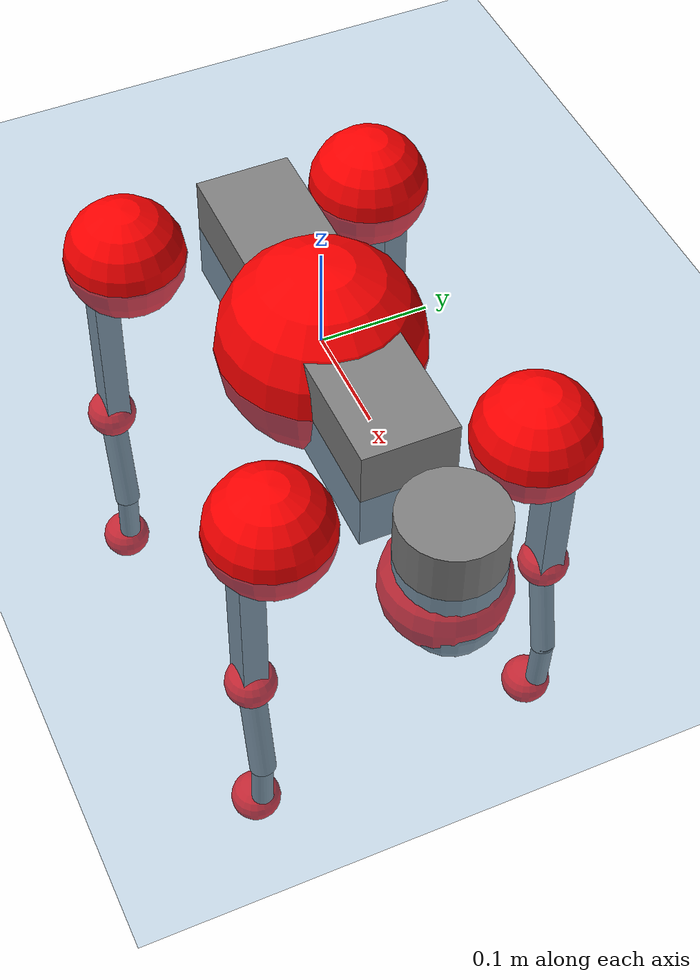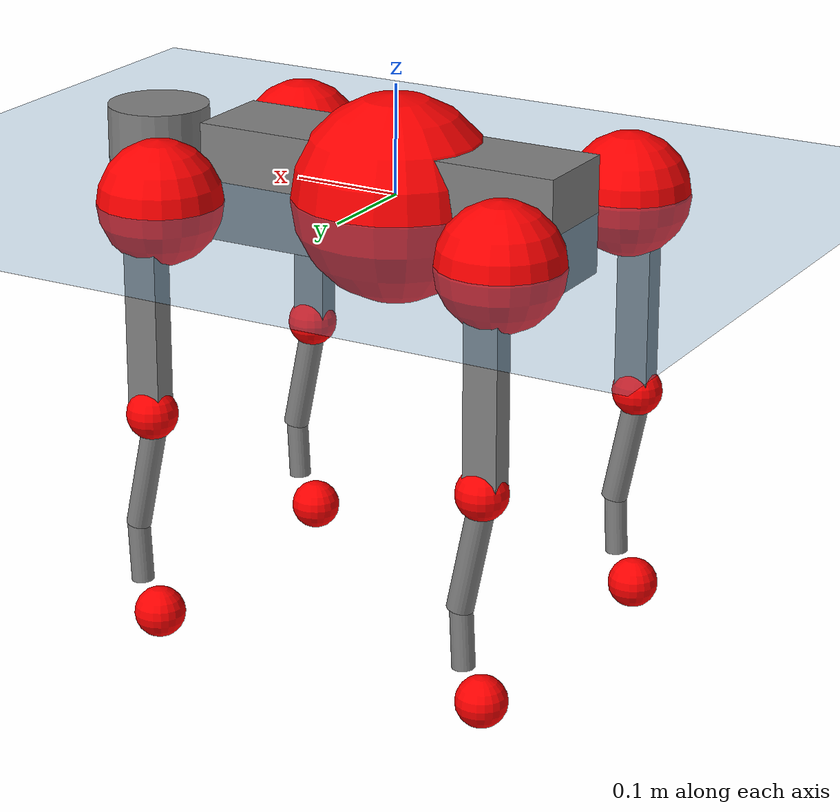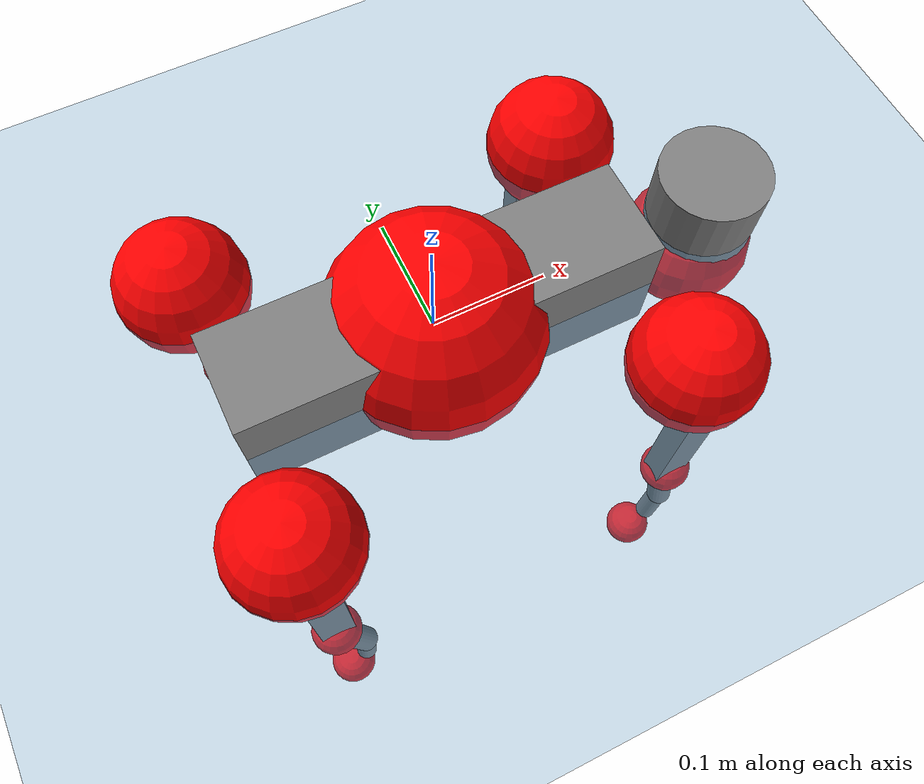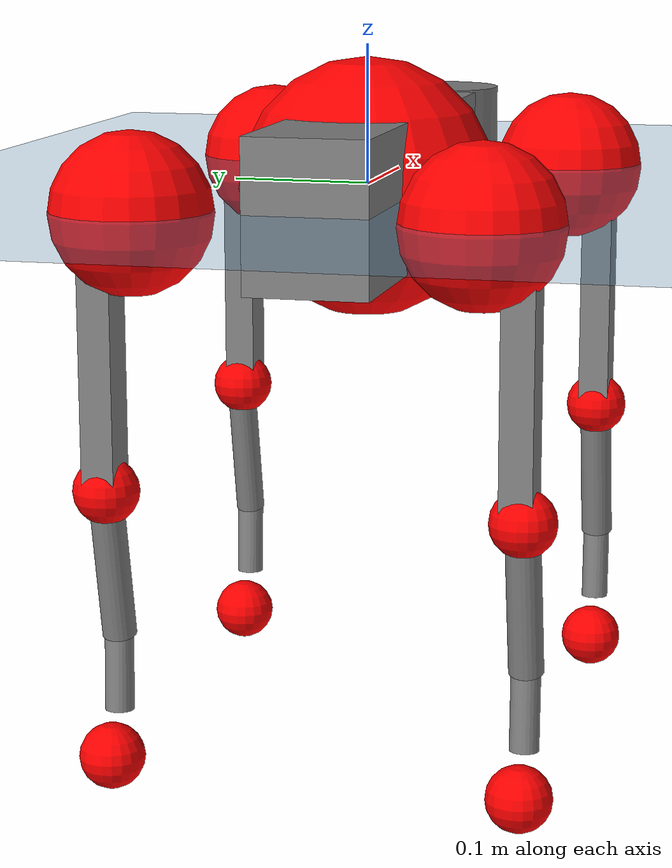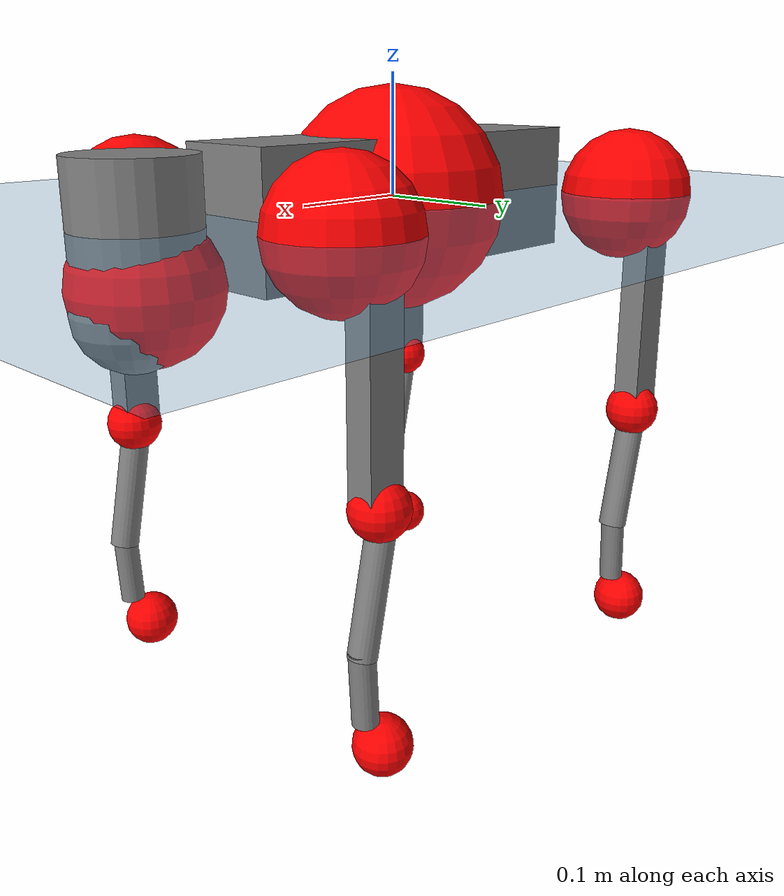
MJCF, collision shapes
<mujoco model="go2">
  <compiler angle="radian" assetdir="assets" balanceinertia="true" inertiafromgeom="false"/>

  <option timestep="0.005" density="1.2" viscosity="2e-05"/>

  <size nkey="1"/>

  <visual>
    <quality shadowsize="8192"/>
    <map shadowclip="0.5"/>
  </visual>

  <default>
    <default class="/">
      <geom contype="0" conaffinity="0" group="1" solref="-1000 -80"/>
      <site size="0.01 0.005 0.005" group="5"/>
      <general forcelimited="true" biastype="affine" gainprm="20" biasprm="0 -20 -0.5"/>
      <default class="go2">
        <joint armature="0.01" damping="0.01" frictionloss="0.2"/>
        <geom condim="1" margin="0.001"/>
        <default class="visual">
          <geom type="mesh" group="2"/>
        </default>
        <default class="collision">
          <geom group="3"/>
          <default class="foot">
            <geom size="0.022 0 0" condim="6" priority="1" friction="0.8 0.02 0.01" solimp="0.015 1 0.022"/>
          </default>
        </default>
        <default class="reward_collision_sphere">
          <geom group="5" rgba="1 0 0 1"/>
        </default>
      </default>
    </default>
  </default>

  <asset>
    <texture type="skybox" colorspace="auto" name="//unnamed_texture_0" builtin="gradient" rgb1="0.95 0.95 0.95" rgb2="0.95 0.95 0.95" width="100" height="600"/>
    <texture type="2d" colorspace="auto" name="texplane" builtin="checker" rgb1="0.345 0.575 0.748" rgb2="0.345 0.575 0.748" markrgb="1 1 1" width="512" height="512"/>
    <material name="MatPlane" class="/" texture="texplane" texuniform="true" texrepeat="2 2" specular="0.9"/>
    <material name="metal" class="/" rgba="0.9 0.95 0.95 1"/>
    <material name="black" class="/" rgba="0 0 0 1"/>
    <material name="white" class="/"/>
    <material name="gray" class="/" rgba="0.671705 0.692426 0.77427 1"/>
    <mesh name="base_0" class="/" file="base_0.obj"/>
    <mesh name="base_1" class="/" file="base_1.obj"/>
    <mesh name="base_2" class="/" file="base_2.obj"/>
    <mesh name="base_3" class="/" file="base_3.obj"/>
    <mesh name="base_4" class="/" file="base_4.obj"/>
    <mesh name="hip_0" class="/" file="hip_0.obj"/>
    <mesh name="hip_1" class="/" file="hip_1.obj"/>
    <mesh name="thigh_0" class="/" file="thigh_0.obj"/>
    <mesh name="thigh_1" class="/" file="thigh_1.obj"/>
    <mesh name="thigh_mirror_0" class="/" file="thigh_mirror_0.obj"/>
    <mesh name="thigh_mirror_1" class="/" file="thigh_mirror_1.obj"/>
    <mesh name="calf_0" class="/" file="calf_0.obj"/>
    <mesh name="calf_1" class="/" file="calf_1.obj"/>
    <mesh name="calf_mirror_0" class="/" file="calf_mirror_0.obj"/>
    <mesh name="calf_mirror_1" class="/" file="calf_mirror_1.obj"/>
    <mesh name="foot" class="/" file="foot.obj"/>
  </asset>

  <worldbody>
    <geom name="floor" class="/" size="100 100 0.125" type="plane" group="0" material="MatPlane"/>
    <light name="toplight_shadow" class="/" pos="0 0 5" dir="0.0990148 0.0990148 -0.990148" type="directional" ambient="0.04 0.04 0.04" diffuse="0.55 0.55 0.55" specular="0.12 0.12 0.12"/>
    <light name="toplight_fill" class="/" pos="0 0 5" dir="0.0990148 0.0990148 -0.990148" type="directional" castshadow="false" ambient="0.04 0.04 0.04" diffuse="0.3 0.3 0.3" specular="0.08 0.08 0.08"/>
    <body name="trunk" childclass="go2" pos="-0.000127388 0.000103355 -0.0022558" quat="1 0.000172945 1.96597e-05 -0.000208077">
      <inertial pos="0.0184185 0.00257653 -0.0023766" quat="-0.000675936 0.713767 -0.0014403 0.700382" mass="5.58166" diaginertia="0.0584622 0.10976 0.0148607"/>
      <joint name="//unnamed_joint_0" type="free" armature="0" damping="0" frictionloss="0"/>
      <geom name="//unnamed_geom_1" class="visual" material="black" mesh="base_0"/>
      <geom name="//unnamed_geom_2" class="visual" material="black" mesh="base_1"/>
      <geom name="//unnamed_geom_3" class="visual" material="black" mesh="base_2"/>
      <geom name="//unnamed_geom_4" class="visual" material="white" mesh="base_3"/>
      <geom name="//unnamed_geom_5" class="visual" material="gray" mesh="base_4"/>
      <geom name="trunk_1" class="collision" size="0.176567 0.0438837 0.0535053" type="box"/>
      <geom name="trunk_2" class="collision" size="0.0469344 0.042241" pos="0.251407 0 0.00908363" type="cylinder"/>
      <geom name="trunk_3" class="collision" size="0.0441184" pos="0.258465 0 -0.0545018"/>
      <geom name="//unnamed_geom_9" class="reward_collision_sphere" size="0.0938689"/>
      <geom name="//unnamed_geom_10" class="reward_collision_sphere" size="0.0563213" pos="0.246997 0 -0.0408763"/>
      <site name="imu" pos="-0.0241133 -0.00645158 0.0380325" size="0.00938689"/>
      <camera name="track" pos="0 -2.05114 0" quat="0.707107 0.707107 0 0" mode="trackcom"/>
      <camera name="ego_camera" pos="0.275225 0 0.0408763" quat="-0.5 -0.5 0.5 0.5"/>
      <body name="FL_hip" pos="0.170244 0.0464554 0.000518565" quat="1 0.000126239 0.00017341 -6.28695e-06">
        <inertial pos="-0.0073734 0.0017361 -0.00134413" quat="0.493663 0.501282 0.507514 0.497436" mass="0.572046" diaginertia="0.000475908 0.000672319 0.000304853"/>
        <joint name="FL_hip_joint" pos="0 0 0" axis="0.999983 -0.00434222 0.00379769" stiffness="0.000731168" range="-1.05486 1.05294" armature="0.0102065" damping="0.0117102" frictionloss="0.162661"/>
        <geom name="//unnamed_geom_11" class="visual" material="metal" mesh="hip_0"/>
        <geom name="//unnamed_geom_12" class="visual" material="gray" mesh="hip_1"/>
        <geom name="//unnamed_geom_13" class="collision" size="0.0431797 0.0187738" pos="0 0.0820457 0" quat="0.707107 0.707107 0 0" type="cylinder"/>
        <geom name="//unnamed_geom_14" class="reward_collision_sphere" size="0.0563213" pos="0 0.07179 0"/>
        <body name="FL_thigh" pos="-0.00184869 0.0984798 0.00264653" quat="1 2.1297e-06 -0.000228892 -1.8644e-05">
          <inertial pos="-0.00440622 -0.0225814 -0.0307313" quat="0.82983 0.0854404 -0.0220691 0.550994" mass="0.909018" diaginertia="0.00317338 0.00660237 0.000507615"/>
          <joint name="FL_thigh_joint" pos="0 0 0" axis="-0.0071318 0.999928 0.00961908" stiffness="0.000884009" range="-1.60756 3.50381" armature="0.00905815" damping="0.0117796" frictionloss="0.184172"/>
          <geom name="//unnamed_geom_15" class="visual" material="metal" mesh="thigh_0"/>
          <geom name="//unnamed_geom_16" class="visual" material="gray" mesh="thigh_1"/>
          <geom name="//unnamed_geom_17" class="collision" size="0.0999704 0.0114989 0.0159577" pos="0 0 -0.0967407" quat="0.707107 0 0.707107 0" type="box"/>
          <body name="FL_calf" pos="-0.00245787 0.00135628 -0.191236" quat="0.999999 0.000443249 0.000462997 0.00127821">
            <inertial pos="0.00549792 -0.000537383 -0.12776" quat="0.710714 0.00104501 -0.00464701 0.703465" mass="0.194023" diaginertia="0.000795966 0.00162443 3.18946e-05"/>
            <joint name="FL_calf_joint" pos="0 0 0" axis="0.000511551 0.999948 0.0101743" range="-2.73503 -0.818441" armature="0.00924249" damping="0.0153986" frictionloss="0.166579"/>
            <geom name="//unnamed_geom_18" class="visual" material="gray" mesh="calf_0"/>
            <geom name="//unnamed_geom_19" class="visual" material="black" mesh="calf_1"/>
            <geom name="FL_calf0" class="collision" size="0.0112643 0.0563213" pos="0.00705705 0 -0.0545018" quat="0.994493 0 -0.104807 0" type="cylinder"/>
            <geom name="//unnamed_geom_21" class="collision" size="0.0103256 0.0305074" pos="0.0176426 0 -0.134438" quat="0.999688 0 0.0249974 0" type="cylinder"/>
            <geom name="//unnamed_geom_22" class="visual" pos="0 0 -0.193481" quat="1 0 0 0" material="black" mesh="foot"/>
            <geom name="FL_foot" class="foot" size="0.0188268" pos="-0.00176426 0 -0.193481"/>
            <geom name="//unnamed_geom_24" class="reward_collision_sphere" size="0.0234672"/>
            <geom name="//unnamed_geom_25" class="reward_collision_sphere" size="0.0234672" pos="-0.00176426 0 -0.193481"/>
            <site name="FL_foot" class="foot" pos="-0.00176426 0 -0.193481" size="0.00938689"/>
          </body>
        </body>
      </body>
      <body name="FR_hip" pos="0.171604 -0.0488295 -0.000814674" quat="0.999999 0.000260945 -3.81059e-05 0.00134181">
        <inertial pos="-0.00468893 -0.002067 0.000762937" quat="0.49842 0.504965 0.499515 0.497064" mass="0.537161" diaginertia="0.000455731 0.000645567 0.000296483"/>
        <joint name="FR_hip_joint" pos="0 0 0" axis="0.999997 -0.0019734 0.00148262" stiffness="0.00699369" range="-0.999569 0.994527" armature="0.00919673" damping="0.0141212" frictionloss="0.170348"/>
        <geom name="//unnamed_geom_26" class="visual" pos="0 1.02107e-09 4.37959e-08" quat="4.63268e-05 1 0 0" material="metal" mesh="hip_0"/>
        <geom name="//unnamed_geom_27" class="visual" pos="0 1.65528e-09 -1.08324e-07" quat="4.63268e-05 1 0 0" material="gray" mesh="hip_1"/>
        <geom name="//unnamed_geom_28" class="collision" size="0.0431797 0.0187738" pos="0 -0.0820457 0" quat="0.707107 0.707107 0 0" type="cylinder"/>
        <geom name="//unnamed_geom_29" class="reward_collision_sphere" size="0.0563213" pos="0 -0.07179 0"/>
        <body name="FR_thigh" pos="0.00296199 -0.0959943 0.000198805" quat="1 6.77508e-05 3.4886e-05 -0.000133531">
          <inertial pos="-0.00297054 0.0239007 -0.0297259" quat="0.552193 -0.0207502 0.0840566 0.829209" mass="0.971775" diaginertia="0.00316559 0.00680266 0.000553102"/>
          <joint name="FR_thigh_joint" pos="0 0 0" axis="-0.00695053 -0.999966 -0.00449464" stiffness="0.00160156" range="-3.44153 1.51402" armature="0.00963229" damping="0" frictionloss="0.197482"/>
          <geom name="//unnamed_geom_30" class="visual" material="metal" mesh="thigh_mirror_0"/>
          <geom name="//unnamed_geom_31" class="visual" material="gray" mesh="thigh_mirror_1"/>
          <geom name="//unnamed_geom_32" class="collision" size="0.0999704 0.0114989 0.0159577" pos="0 0 -0.0967407" quat="0.707107 0 0.707107 0" type="box"/>
          <body name="FR_calf" pos="0.00264841 -0.000301321 -0.191664" quat="1 0.000116083 -0.000178674 0.000499414">
            <inertial pos="0.00559934 0.00181368 -0.126126" quat="0.701202 -0.00415621 0.00310811 0.712944" mass="0.192976" diaginertia="0.000808566 0.00164299 3.25182e-05"/>
            <joint name="FR_calf_joint" pos="0 0 0" axis="0.00729499 -0.999973 -0.000858696" range="0.823671 2.66735" armature="0.00934356" damping="0.0149586" frictionloss="0.164649"/>
            <geom name="//unnamed_geom_33" class="visual" material="gray" mesh="calf_mirror_0"/>
            <geom name="//unnamed_geom_34" class="visual" material="black" mesh="calf_mirror_1"/>
            <geom name="FR_calf0" class="collision" size="0.012203 0.0563213" pos="0.00882132 0 -0.0545018" quat="0.995004 0 -0.0998334 0" type="cylinder"/>
            <geom name="//unnamed_geom_36" class="collision" size="0.0103256 0.0305074" pos="0.0176426 0 -0.134438" quat="0.999688 0 0.0249974 0" type="cylinder"/>
            <geom name="//unnamed_geom_37" class="visual" pos="0 0 -0.193481" quat="1 0 0 0" material="black" mesh="foot"/>
            <geom name="FR_foot" class="foot" size="0.0226223" pos="-0.00176426 0 -0.193481"/>
            <geom name="//unnamed_geom_39" class="reward_collision_sphere" size="0.0234672"/>
            <geom name="//unnamed_geom_40" class="reward_collision_sphere" size="0.0234672" pos="-0.00176426 0 -0.193481"/>
            <site name="FR_foot" class="foot" pos="-0.00176426 0 -0.193481" size="0.00938689"/>
          </body>
        </body>
      </body>
      <body name="RL_hip" pos="-0.169273 0.0504505 -0.000793364" quat="0.999999 -0.000213105 0.000735092 0.00068379">
        <inertial pos="0.00381095 -0.00036572 -0.00111732" quat="0.503151 0.503993 0.488569 0.504113" mass="0.54402" diaginertia="0.000470118 0.000692827 0.000295026"/>
        <joint name="RL_hip_joint" pos="0 0 0" axis="-0.99969 0.0245809 -0.00397293" range="-1.0681 1.02699" armature="0.009387" damping="0.00179105" frictionloss="0.197593"/>
        <geom name="//unnamed_geom_41" class="visual" pos="2.28521e-10 0 4.47953e-08" quat="4.63268e-05 0 1 0" material="metal" mesh="hip_0"/>
        <geom name="//unnamed_geom_42" class="visual" pos="3.70459e-10 0 3.97271e-08" quat="4.63268e-05 0 1 0" material="gray" mesh="hip_1"/>
        <geom name="//unnamed_geom_43" class="collision" size="0.0431797 0.0187738" pos="0 0.0820457 0" quat="0.707107 0.707107 0 0" type="cylinder"/>
        <geom name="//unnamed_geom_44" class="reward_collision_sphere" size="0.0563213" pos="0 0.07179 0"/>
        <body name="RL_thigh" pos="-0.000285205 0.0950422 -0.000225257" quat="1 1.60014e-05 -7.57717e-05 0.000651098">
          <inertial pos="-0.0029432 -0.024831 -0.0297331" quat="0.829593 0.0846021 -0.0200854 0.551557" mass="0.953189" diaginertia="0.00333031 0.00674065 0.000568114"/>
          <joint name="RL_thigh_joint" pos="0 0 0" axis="0.00922603 0.999939 0.00608316" stiffness="0.00914433" range="-0.527834 4.53209" armature="0.00926964" damping="0.00522708" frictionloss="0.189679"/>
          <geom name="//unnamed_geom_45" class="visual" material="metal" mesh="thigh_0"/>
          <geom name="//unnamed_geom_46" class="visual" material="gray" mesh="thigh_1"/>
          <geom name="//unnamed_geom_47" class="collision" size="0.0999704 0.0114989 0.0159577" pos="0 0 -0.0967407" quat="0.707107 0 0.707107 0" type="box"/>
          <body name="RL_calf" pos="0.00271348 0.000130904 -0.194006" quat="0.999999 -0.000788188 -0.0010052 0.000602475">
            <inertial pos="0.00807275 2.39381e-05 -0.13052" quat="0.710592 0.00189648 -0.00419103 0.70359" mass="0.198311" diaginertia="0.000824739 0.00176738 3.47963e-05"/>
            <joint name="RL_calf_joint" pos="0 0 0" axis="0.015995 0.999849 0.00682498" stiffness="1.75643e-05" range="-2.72469 -0.881568" armature="0.00941142" damping="0.0103382" frictionloss="0.195755"/>
            <geom name="//unnamed_geom_48" class="visual" material="gray" mesh="calf_0"/>
            <geom name="//unnamed_geom_49" class="visual" material="black" mesh="calf_1"/>
            <geom name="RL_calf0" class="collision" size="0.012203 0.0563213" pos="0.00882132 0 -0.0545018" quat="0.995004 0 -0.0998334 0" type="cylinder"/>
            <geom name="//unnamed_geom_51" class="collision" size="0.0103256 0.0305074" pos="0.0176426 0 -0.134438" quat="0.999688 0 0.0249974 0" type="cylinder"/>
            <geom name="//unnamed_geom_52" class="visual" pos="0 0 -0.193481" quat="1 0 0 0" material="black" mesh="foot"/>
            <geom name="RL_foot" class="foot" size="0.0164322" pos="-0.00176426 0 -0.193481"/>
            <geom name="//unnamed_geom_54" class="reward_collision_sphere" size="0.0234672"/>
            <geom name="//unnamed_geom_55" class="reward_collision_sphere" size="0.0234672" pos="-0.00176426 0 -0.193481"/>
            <site name="RL_foot" class="foot" pos="-0.00176426 0 -0.193481" size="0.00938689"/>
          </body>
        </body>
      </body>
      <body name="RR_hip" pos="-0.170228 -0.0460603 -0.00148967" quat="0.999999 -0.000279395 0.00094567 -0.000857019">
        <inertial pos="0.00351341 -0.00101844 -0.000323513" quat="0.506532 0.497605 0.48832 0.507304" mass="0.552826" diaginertia="0.000470828 0.000652274 0.000288848"/>
        <joint name="RR_hip_joint" pos="0 0 0" axis="-0.999997 -0.00183138 -0.00184039" range="-1.10213 1.02502" armature="0.00798349" damping="0.00435909" frictionloss="0.20435"/>
        <geom name="//unnamed_geom_56" class="visual" pos="-2.23555e-10 1.02107e-09 9.99427e-10" quat="2.14617e-09 4.63268e-05 4.63268e-05 -1" material="metal" mesh="hip_0"/>
        <geom name="//unnamed_geom_57" class="visual" pos="-3.82742e-10 1.65528e-09 1.48051e-07" quat="2.14617e-09 4.63268e-05 4.63268e-05 -1" material="gray" mesh="hip_1"/>
        <geom name="//unnamed_geom_58" class="collision" size="0.0431797 0.0187738" pos="0 -0.0820457 0" quat="0.707107 0.707107 0 0" type="cylinder"/>
        <geom name="//unnamed_geom_59" class="reward_collision_sphere" size="0.0563213" pos="0 -0.07179 0"/>
        <body name="RR_thigh" pos="0.000602795 -0.0984872 -0.00285676" quat="1 -4.21703e-05 2.95991e-05 -2.18296e-05">
          <inertial pos="-0.00324052 0.0253762 -0.0283543" quat="0.546944 -0.0142556 0.0949294 0.831648" mass="0.927438" diaginertia="0.0030728 0.00638293 0.000529286"/>
          <joint name="RR_thigh_joint" pos="0 0 0" axis="-0.00236901 -0.999996 0.00128953" stiffness="0.00909197" range="-4.53438 0.468836" armature="0.01067" damping="0.0123668" frictionloss="0.18228"/>
          <geom name="//unnamed_geom_60" class="visual" material="metal" mesh="thigh_mirror_0"/>
          <geom name="//unnamed_geom_61" class="visual" material="gray" mesh="thigh_mirror_1"/>
          <geom name="//unnamed_geom_62" class="collision" size="0.0999704 0.0114989 0.0159577" pos="0 0 -0.0967407" quat="0.707107 0 0.707107 0" type="box"/>
          <body name="RR_calf" pos="-0.000834213 -0.00296152 -0.194255" quat="0.999999 -9.91396e-05 -0.00103747 -0.000747522">
            <inertial pos="0.00619417 0.000143857 -0.128716" quat="0.70077 0.00818114 0.00332737 0.713333" mass="0.190425" diaginertia="0.000775884 0.00165339 3.34478e-05"/>
            <joint name="RR_calf_joint" pos="0 0 0" axis="0.00621168 -0.999951 0.00771268" stiffness="0.0110791" range="0.889134 2.78025" armature="0.0092367" damping="0.015885" frictionloss="0.179171"/>
            <geom name="//unnamed_geom_63" class="visual" material="gray" mesh="calf_mirror_0"/>
            <geom name="//unnamed_geom_64" class="visual" material="black" mesh="calf_mirror_1"/>
            <geom name="RR_calf0" class="collision" size="0.012203 0.0563213" pos="0.00882132 0 -0.0545018" quat="0.995004 0 -0.0998334 0" type="cylinder"/>
            <geom name="//unnamed_geom_66" class="collision" size="0.0103256 0.0305074" pos="0.0176426 0 -0.134438" quat="0.999688 0 0.0249974 0" type="cylinder"/>
            <geom name="//unnamed_geom_67" class="visual" pos="0 0 -0.193481" quat="1 0 0 0" material="black" mesh="foot"/>
            <geom name="RR_foot" class="foot" size="0.0201029" pos="-0.00176426 0 -0.193481"/>
            <geom name="//unnamed_geom_69" class="reward_collision_sphere" size="0.0234672"/>
            <geom name="//unnamed_geom_70" class="reward_collision_sphere" size="0.0234672" pos="-0.00176426 0 -0.193481"/>
            <site name="RR_foot" class="foot" pos="-0.00176426 0 -0.193481" size="0.00938689"/>
          </body>
        </body>
      </body>
    </body>
  </worldbody>

  <contact>
    <pair class="/" geom1="floor" geom2="FL_foot" name="//unnamed_contact_0"/>
    <pair class="/" geom1="floor" geom2="FR_foot" name="//unnamed_contact_1"/>
    <pair class="/" geom1="floor" geom2="RL_foot" name="//unnamed_contact_2"/>
    <pair class="/" geom1="floor" geom2="RR_foot" name="//unnamed_contact_3"/>
  </contact>

  <actuator>
    <general name="FL_hip" class="/" joint="FL_hip_joint" forcerange="-21.048 21.048" gainprm="20.1391" biasprm="0 -20.1391 -0.472074"/>
    <general name="FL_thigh" class="/" joint="FL_thigh_joint" forcerange="-20.2284 20.2284" gainprm="20.1391" biasprm="0 -20.1391 -0.472074"/>
    <general name="FL_calf" class="/" joint="FL_calf_joint" forcerange="-41.1451 41.1451" gainprm="20.1391" biasprm="0 -20.1391 -0.472074"/>
    <general name="FR_hip" class="/" joint="FR_hip_joint" forcerange="-22.7462 22.7462" gainprm="20.1391" biasprm="0 -20.1391 -0.472074"/>
    <general name="FR_thigh" class="/" joint="FR_thigh_joint" forcerange="-22.0248 22.0248" gainprm="20.1391" biasprm="0 -20.1391 -0.472074"/>
    <general name="FR_calf" class="/" joint="FR_calf_joint" forcerange="-41.6107 41.6107" gainprm="20.1391" biasprm="0 -20.1391 -0.472074"/>
    <general name="RL_hip" class="/" joint="RL_hip_joint" forcerange="-23.9311 23.9311" gainprm="20.1391" biasprm="0 -20.1391 -0.472074"/>
    <general name="RL_thigh" class="/" joint="RL_thigh_joint" forcerange="-22.3003 22.3003" gainprm="20.1391" biasprm="0 -20.1391 -0.472074"/>
    <general name="RL_calf" class="/" joint="RL_calf_joint" forcerange="-40.867 40.867" gainprm="20.1391" biasprm="0 -20.1391 -0.472074"/>
    <general name="RR_hip" class="/" joint="RR_hip_joint" forcerange="-20.1504 20.1504" gainprm="20.1391" biasprm="0 -20.1391 -0.472074"/>
    <general name="RR_thigh" class="/" joint="RR_thigh_joint" forcerange="-23.0932 23.0932" gainprm="20.1391" biasprm="0 -20.1391 -0.472074"/>
    <general name="RR_calf" class="/" joint="RR_calf_joint" forcerange="-44.1845 44.1845" gainprm="20.1391" biasprm="0 -20.1391 -0.472074"/>
  </actuator>

  <sensor>
    <gyro site="imu" name="imu_angular_velocity"/>
    <velocimeter site="imu" name="imu_linear_velocity"/>
    <framelinvel objtype="site" objname="FL_foot" name="FL_foot_global_linear_velocity"/>
    <framelinvel objtype="site" objname="FR_foot" name="FR_foot_global_linear_velocity"/>
    <framelinvel objtype="site" objname="RL_foot" name="RL_foot_global_linear_velocity"/>
    <framelinvel objtype="site" objname="RR_foot" name="RR_foot_global_linear_velocity"/>
  </sensor>

  <keyframe>
    <key name="home" qpos="0 0 0.325 1 0 0 0 0.1 0.8 -1.5 -0.1 -0.8 1.5 -0.1 0.8 -1.5 0.1 -0.8 1.5"/>
  </keyframe>
</mujoco>
